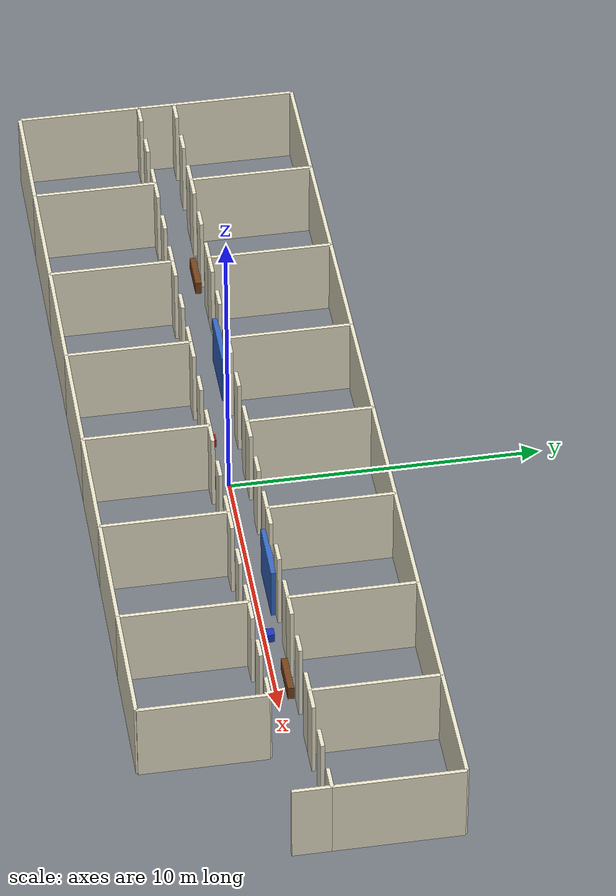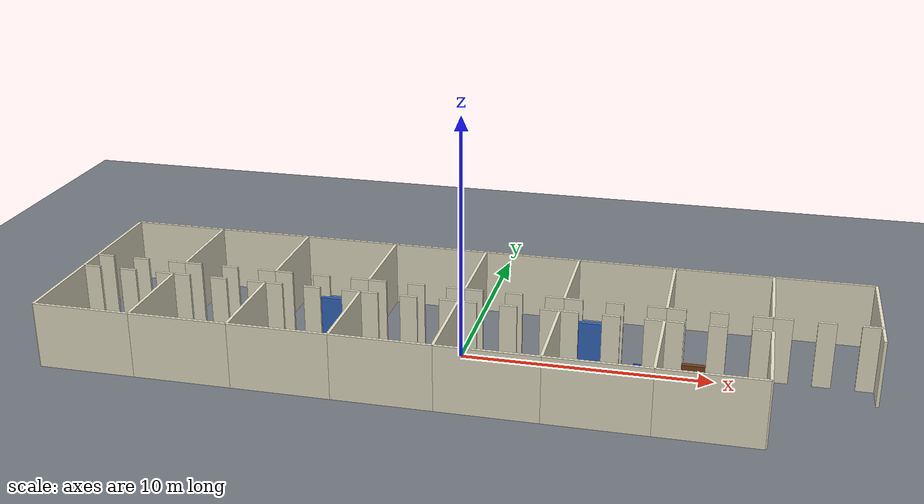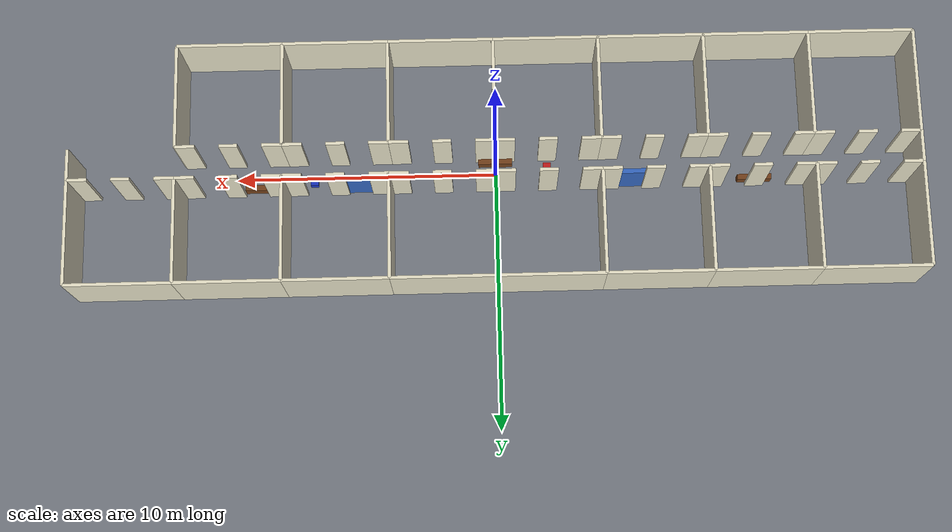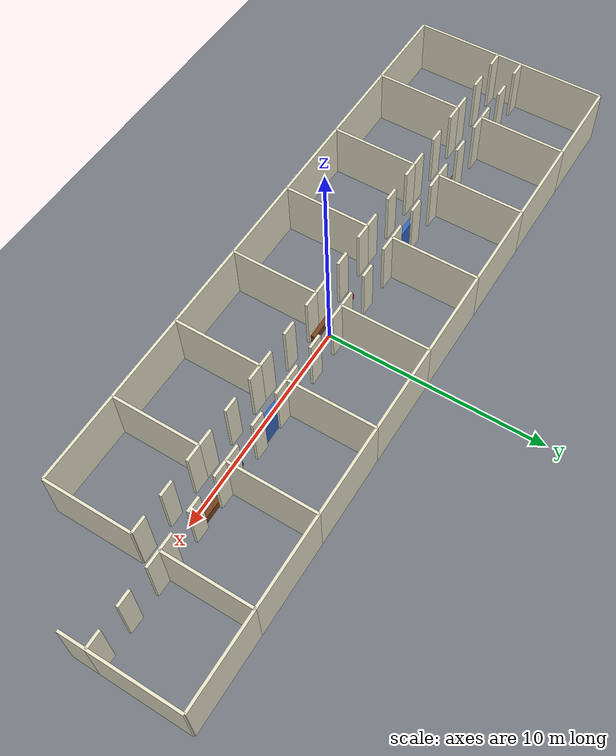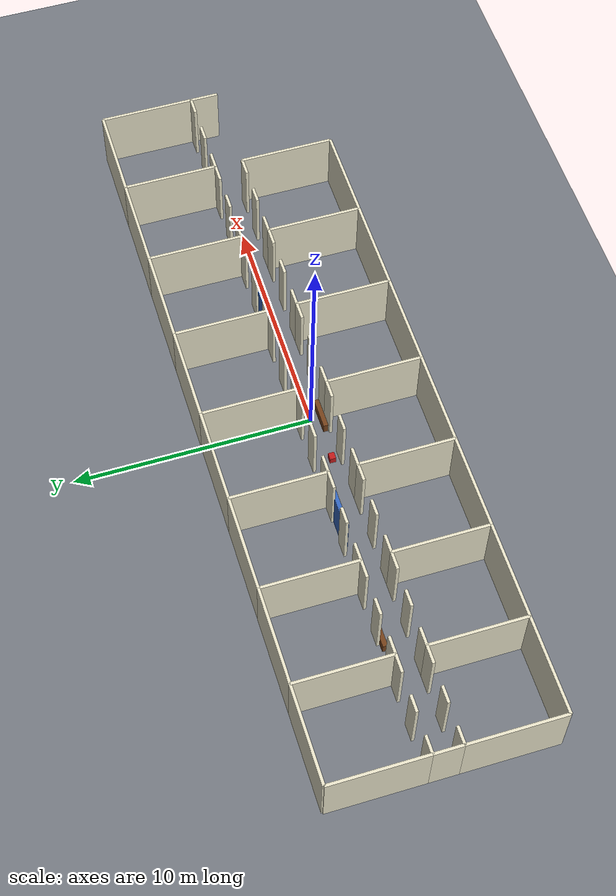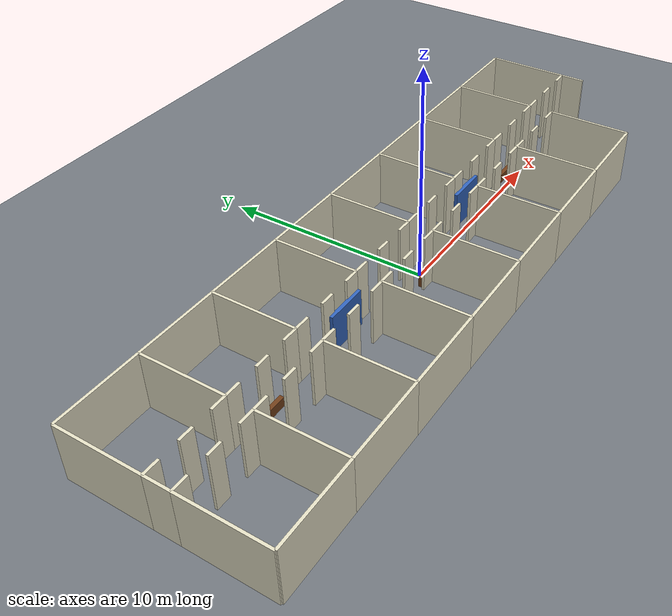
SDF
<sdf version="1.9">
 <world name="school_arena">
  <model name="ground">
   <static>true</static>
   <link name="link">
    <collision name="collision">
     <geometry><plane><normal>0 0 1</normal><size>80 40</size></plane></geometry>
    </collision>
    <visual name="visual">
     <geometry><plane><normal>0 0 1</normal><size>80 40</size></plane></geometry>
     <material><ambient>0.45 0.47 0.50 1</ambient><diffuse>0.45 0.47 0.50 1</diffuse></material>
    </visual>
   </link>
  </model>
  <model name="room_1_back">
   <static>true</static>
   <pose>-14.0 4.6 1.35 0 0 0</pose>
   <link name="link">
    <collision name="collision"><geometry><box><size>4.0 0.12 2.7</size></box></geometry></collision>
    <visual name="visual">
     <geometry><box><size>4.0 0.12 2.7</size></box></geometry>
     <material><ambient>0.90 0.88 0.78 1</ambient><diffuse>0.90 0.88 0.78 1</diffuse></material>
    </visual>
   </link>
  </model>
  <model name="room_1_left">
   <static>true</static>
   <pose>-16.0 2.5999999999999996 1.35 0 0 0</pose>
   <link name="link">
    <collision name="collision">
     <geometry><box><size>0.12 3.9999999999999996 2.7</size></box></geometry>
    </collision>
    <visual name="visual">
     <geometry><box><size>0.12 3.9999999999999996 2.7</size></box></geometry>
     <material><ambient>0.90 0.88 0.78 1</ambient><diffuse>0.90 0.88 0.78 1</diffuse></material>
    </visual>
   </link>
  </model>
  <model name="room_1_right">
   <static>true</static>
   <pose>-12.0 2.5999999999999996 1.35 0 0 0</pose>
   <link name="link">
    <collision name="collision">
     <geometry><box><size>0.12 3.9999999999999996 2.7</size></box></geometry>
    </collision>
    <visual name="visual">
     <geometry><box><size>0.12 3.9999999999999996 2.7</size></box></geometry>
     <material><ambient>0.90 0.88 0.78 1</ambient><diffuse>0.90 0.88 0.78 1</diffuse></material>
    </visual>
   </link>
  </model>
  <model name="room_1_wall_1">
   <static>true</static>
   <pose>-15.625 0.6 1.35 0 0 0</pose>
   <link name="link">
    <collision name="collision"><geometry><box><size>0.75 0.12 2.7</size></box></geometry></collision>
    <visual name="visual">
     <geometry><box><size>0.75 0.12 2.7</size></box></geometry>
     <material><ambient>0.90 0.88 0.78 1</ambient><diffuse>0.90 0.88 0.78 1</diffuse></material>
    </visual>
   </link>
  </model>
  <model name="room_1_wall_2">
   <static>true</static>
   <pose>-14.0 0.6 1.35 0 0 0</pose>
   <link name="link">
    <collision name="collision">
     <geometry><box><size>0.7000000000000028 0.12 2.7</size></box></geometry>
    </collision>
    <visual name="visual">
     <geometry><box><size>0.7000000000000028 0.12 2.7</size></box></geometry>
     <material><ambient>0.90 0.88 0.78 1</ambient><diffuse>0.90 0.88 0.78 1</diffuse></material>
    </visual>
   </link>
  </model>
  <model name="room_1_wall_3">
   <static>true</static>
   <pose>-12.375 0.6 1.35 0 0 0</pose>
   <link name="link">
    <collision name="collision"><geometry><box><size>0.75 0.12 2.7</size></box></geometry></collision>
    <visual name="visual">
     <geometry><box><size>0.75 0.12 2.7</size></box></geometry>
     <material><ambient>0.90 0.88 0.78 1</ambient><diffuse>0.90 0.88 0.78 1</diffuse></material>
    </visual>
   </link>
  </model>
  <model name="room_2_back">
   <static>true</static>
   <pose>-10.0 4.6 1.35 0 0 0</pose>
   <link name="link">
    <collision name="collision"><geometry><box><size>4.0 0.12 2.7</size></box></geometry></collision>
    <visual name="visual">
     <geometry><box><size>4.0 0.12 2.7</size></box></geometry>
     <material><ambient>0.90 0.88 0.78 1</ambient><diffuse>0.90 0.88 0.78 1</diffuse></material>
    </visual>
   </link>
  </model>
  <model name="room_2_left">
   <static>true</static>
   <pose>-12.0 2.5999999999999996 1.35 0 0 0</pose>
   <link name="link">
    <collision name="collision">
     <geometry><box><size>0.12 3.9999999999999996 2.7</size></box></geometry>
    </collision>
    <visual name="visual">
     <geometry><box><size>0.12 3.9999999999999996 2.7</size></box></geometry>
     <material><ambient>0.90 0.88 0.78 1</ambient><diffuse>0.90 0.88 0.78 1</diffuse></material>
    </visual>
   </link>
  </model>
  <model name="room_2_right">
   <static>true</static>
   <pose>-8.0 2.5999999999999996 1.35 0 0 0</pose>
   <link name="link">
    <collision name="collision">
     <geometry><box><size>0.12 3.9999999999999996 2.7</size></box></geometry>
    </collision>
    <visual name="visual">
     <geometry><box><size>0.12 3.9999999999999996 2.7</size></box></geometry>
     <material><ambient>0.90 0.88 0.78 1</ambient><diffuse>0.90 0.88 0.78 1</diffuse></material>
    </visual>
   </link>
  </model>
  <model name="room_2_wall_1">
   <static>true</static>
   <pose>-11.625 0.6 1.35 0 0 0</pose>
   <link name="link">
    <collision name="collision"><geometry><box><size>0.75 0.12 2.7</size></box></geometry></collision>
    <visual name="visual">
     <geometry><box><size>0.75 0.12 2.7</size></box></geometry>
     <material><ambient>0.90 0.88 0.78 1</ambient><diffuse>0.90 0.88 0.78 1</diffuse></material>
    </visual>
   </link>
  </model>
  <model name="room_2_wall_2">
   <static>true</static>
   <pose>-10.0 0.6 1.35 0 0 0</pose>
   <link name="link">
    <collision name="collision">
     <geometry><box><size>0.7000000000000028 0.12 2.7</size></box></geometry>
    </collision>
    <visual name="visual">
     <geometry><box><size>0.7000000000000028 0.12 2.7</size></box></geometry>
     <material><ambient>0.90 0.88 0.78 1</ambient><diffuse>0.90 0.88 0.78 1</diffuse></material>
    </visual>
   </link>
  </model>
  <model name="room_2_wall_3">
   <static>true</static>
   <pose>-8.375 0.6 1.35 0 0 0</pose>
   <link name="link">
    <collision name="collision"><geometry><box><size>0.75 0.12 2.7</size></box></geometry></collision>
    <visual name="visual">
     <geometry><box><size>0.75 0.12 2.7</size></box></geometry>
     <material><ambient>0.90 0.88 0.78 1</ambient><diffuse>0.90 0.88 0.78 1</diffuse></material>
    </visual>
   </link>
  </model>
  <model name="room_3_back">
   <static>true</static>
   <pose>-6.0 4.6 1.35 0 0 0</pose>
   <link name="link">
    <collision name="collision"><geometry><box><size>4.0 0.12 2.7</size></box></geometry></collision>
    <visual name="visual">
     <geometry><box><size>4.0 0.12 2.7</size></box></geometry>
     <material><ambient>0.90 0.88 0.78 1</ambient><diffuse>0.90 0.88 0.78 1</diffuse></material>
    </visual>
   </link>
  </model>
  <model name="room_3_left">
   <static>true</static>
   <pose>-8.0 2.5999999999999996 1.35 0 0 0</pose>
   <link name="link">
    <collision name="collision">
     <geometry><box><size>0.12 3.9999999999999996 2.7</size></box></geometry>
    </collision>
    <visual name="visual">
     <geometry><box><size>0.12 3.9999999999999996 2.7</size></box></geometry>
     <material><ambient>0.90 0.88 0.78 1</ambient><diffuse>0.90 0.88 0.78 1</diffuse></material>
    </visual>
   </link>
  </model>
  <model name="room_3_right">
   <static>true</static>
   <pose>-4.0 2.5999999999999996 1.35 0 0 0</pose>
   <link name="link">
    <collision name="collision">
     <geometry><box><size>0.12 3.9999999999999996 2.7</size></box></geometry>
    </collision>
    <visual name="visual">
     <geometry><box><size>0.12 3.9999999999999996 2.7</size></box></geometry>
     <material><ambient>0.90 0.88 0.78 1</ambient><diffuse>0.90 0.88 0.78 1</diffuse></material>
    </visual>
   </link>
  </model>
  <model name="room_3_wall_1">
   <static>true</static>
   <pose>-7.625 0.6 1.35 0 0 0</pose>
   <link name="link">
    <collision name="collision"><geometry><box><size>0.75 0.12 2.7</size></box></geometry></collision>
    <visual name="visual">
     <geometry><box><size>0.75 0.12 2.7</size></box></geometry>
     <material><ambient>0.90 0.88 0.78 1</ambient><diffuse>0.90 0.88 0.78 1</diffuse></material>
    </visual>
   </link>
  </model>
  <model name="room_3_wall_2">
   <static>true</static>
   <pose>-6.0 0.6 1.35 0 0 0</pose>
   <link name="link">
    <collision name="collision">
     <geometry><box><size>0.6999999999999993 0.12 2.7</size></box></geometry>
    </collision>
    <visual name="visual">
     <geometry><box><size>0.6999999999999993 0.12 2.7</size></box></geometry>
     <material><ambient>0.90 0.88 0.78 1</ambient><diffuse>0.90 0.88 0.78 1</diffuse></material>
    </visual>
   </link>
  </model>
  <model name="room_3_wall_3">
   <static>true</static>
   <pose>-4.375 0.6 1.35 0 0 0</pose>
   <link name="link">
    <collision name="collision"><geometry><box><size>0.75 0.12 2.7</size></box></geometry></collision>
    <visual name="visual">
     <geometry><box><size>0.75 0.12 2.7</size></box></geometry>
     <material><ambient>0.90 0.88 0.78 1</ambient><diffuse>0.90 0.88 0.78 1</diffuse></material>
    </visual>
   </link>
  </model>
  <model name="room_4_back">
   <static>true</static>
   <pose>-2.0 4.6 1.35 0 0 0</pose>
   <link name="link">
    <collision name="collision"><geometry><box><size>4.0 0.12 2.7</size></box></geometry></collision>
    <visual name="visual">
     <geometry><box><size>4.0 0.12 2.7</size></box></geometry>
     <material><ambient>0.90 0.88 0.78 1</ambient><diffuse>0.90 0.88 0.78 1</diffuse></material>
    </visual>
   </link>
  </model>
  <model name="room_4_left">
   <static>true</static>
   <pose>-4.0 2.5999999999999996 1.35 0 0 0</pose>
   <link name="link">
    <collision name="collision">
     <geometry><box><size>0.12 3.9999999999999996 2.7</size></box></geometry>
    </collision>
    <visual name="visual">
     <geometry><box><size>0.12 3.9999999999999996 2.7</size></box></geometry>
     <material><ambient>0.90 0.88 0.78 1</ambient><diffuse>0.90 0.88 0.78 1</diffuse></material>
    </visual>
   </link>
  </model>
  <model name="room_4_right">
   <static>true</static>
   <pose>0.0 2.5999999999999996 1.35 0 0 0</pose>
   <link name="link">
    <collision name="collision">
     <geometry><box><size>0.12 3.9999999999999996 2.7</size></box></geometry>
    </collision>
    <visual name="visual">
     <geometry><box><size>0.12 3.9999999999999996 2.7</size></box></geometry>
     <material><ambient>0.90 0.88 0.78 1</ambient><diffuse>0.90 0.88 0.78 1</diffuse></material>
    </visual>
   </link>
  </model>
  <model name="room_4_wall_1">
   <static>true</static>
   <pose>-3.625 0.6 1.35 0 0 0</pose>
   <link name="link">
    <collision name="collision"><geometry><box><size>0.75 0.12 2.7</size></box></geometry></collision>
    <visual name="visual">
     <geometry><box><size>0.75 0.12 2.7</size></box></geometry>
     <material><ambient>0.90 0.88 0.78 1</ambient><diffuse>0.90 0.88 0.78 1</diffuse></material>
    </visual>
   </link>
  </model>
  <model name="room_4_wall_2">
   <static>true</static>
   <pose>-2.0 0.6 1.35 0 0 0</pose>
   <link name="link">
    <collision name="collision">
     <geometry><box><size>0.6999999999999995 0.12 2.7</size></box></geometry>
    </collision>
    <visual name="visual">
     <geometry><box><size>0.6999999999999995 0.12 2.7</size></box></geometry>
     <material><ambient>0.90 0.88 0.78 1</ambient><diffuse>0.90 0.88 0.78 1</diffuse></material>
    </visual>
   </link>
  </model>
  <model name="room_4_wall_3">
   <static>true</static>
   <pose>-0.3750000000000001 0.6 1.35 0 0 0</pose>
   <link name="link">
    <collision name="collision">
     <geometry><box><size>0.7500000000000002 0.12 2.7</size></box></geometry>
    </collision>
    <visual name="visual">
     <geometry><box><size>0.7500000000000002 0.12 2.7</size></box></geometry>
     <material><ambient>0.90 0.88 0.78 1</ambient><diffuse>0.90 0.88 0.78 1</diffuse></material>
    </visual>
   </link>
  </model>
  <model name="room_5_back">
   <static>true</static>
   <pose>2.0 4.6 1.35 0 0 0</pose>
   <link name="link">
    <collision name="collision"><geometry><box><size>4.0 0.12 2.7</size></box></geometry></collision>
    <visual name="visual">
     <geometry><box><size>4.0 0.12 2.7</size></box></geometry>
     <material><ambient>0.90 0.88 0.78 1</ambient><diffuse>0.90 0.88 0.78 1</diffuse></material>
    </visual>
   </link>
  </model>
  <model name="room_5_left">
   <static>true</static>
   <pose>0.0 2.5999999999999996 1.35 0 0 0</pose>
   <link name="link">
    <collision name="collision">
     <geometry><box><size>0.12 3.9999999999999996 2.7</size></box></geometry>
    </collision>
    <visual name="visual">
     <geometry><box><size>0.12 3.9999999999999996 2.7</size></box></geometry>
     <material><ambient>0.90 0.88 0.78 1</ambient><diffuse>0.90 0.88 0.78 1</diffuse></material>
    </visual>
   </link>
  </model>
  <model name="room_5_right">
   <static>true</static>
   <pose>4.0 2.5999999999999996 1.35 0 0 0</pose>
   <link name="link">
    <collision name="collision">
     <geometry><box><size>0.12 3.9999999999999996 2.7</size></box></geometry>
    </collision>
    <visual name="visual">
     <geometry><box><size>0.12 3.9999999999999996 2.7</size></box></geometry>
     <material><ambient>0.90 0.88 0.78 1</ambient><diffuse>0.90 0.88 0.78 1</diffuse></material>
    </visual>
   </link>
  </model>
  <model name="room_5_wall_1">
   <static>true</static>
   <pose>0.375 0.6 1.35 0 0 0</pose>
   <link name="link">
    <collision name="collision"><geometry><box><size>0.75 0.12 2.7</size></box></geometry></collision>
    <visual name="visual">
     <geometry><box><size>0.75 0.12 2.7</size></box></geometry>
     <material><ambient>0.90 0.88 0.78 1</ambient><diffuse>0.90 0.88 0.78 1</diffuse></material>
    </visual>
   </link>
  </model>
  <model name="room_5_wall_2">
   <static>true</static>
   <pose>1.9999999999999998 0.6 1.35 0 0 0</pose>
   <link name="link">
    <collision name="collision">
     <geometry><box><size>0.6999999999999997 0.12 2.7</size></box></geometry>
    </collision>
    <visual name="visual">
     <geometry><box><size>0.6999999999999997 0.12 2.7</size></box></geometry>
     <material><ambient>0.90 0.88 0.78 1</ambient><diffuse>0.90 0.88 0.78 1</diffuse></material>
    </visual>
   </link>
  </model>
  <model name="room_5_wall_3">
   <static>true</static>
   <pose>3.625 0.6 1.35 0 0 0</pose>
   <link name="link">
    <collision name="collision"><geometry><box><size>0.75 0.12 2.7</size></box></geometry></collision>
    <visual name="visual">
     <geometry><box><size>0.75 0.12 2.7</size></box></geometry>
     <material><ambient>0.90 0.88 0.78 1</ambient><diffuse>0.90 0.88 0.78 1</diffuse></material>
    </visual>
   </link>
  </model>
  <model name="room_6_back">
   <static>true</static>
   <pose>6.0 4.6 1.35 0 0 0</pose>
   <link name="link">
    <collision name="collision"><geometry><box><size>4.0 0.12 2.7</size></box></geometry></collision>
    <visual name="visual">
     <geometry><box><size>4.0 0.12 2.7</size></box></geometry>
     <material><ambient>0.90 0.88 0.78 1</ambient><diffuse>0.90 0.88 0.78 1</diffuse></material>
    </visual>
   </link>
  </model>
  <model name="room_6_left">
   <static>true</static>
   <pose>4.0 2.5999999999999996 1.35 0 0 0</pose>
   <link name="link">
    <collision name="collision">
     <geometry><box><size>0.12 3.9999999999999996 2.7</size></box></geometry>
    </collision>
    <visual name="visual">
     <geometry><box><size>0.12 3.9999999999999996 2.7</size></box></geometry>
     <material><ambient>0.90 0.88 0.78 1</ambient><diffuse>0.90 0.88 0.78 1</diffuse></material>
    </visual>
   </link>
  </model>
  <model name="room_6_right">
   <static>true</static>
   <pose>8.0 2.5999999999999996 1.35 0 0 0</pose>
   <link name="link">
    <collision name="collision">
     <geometry><box><size>0.12 3.9999999999999996 2.7</size></box></geometry>
    </collision>
    <visual name="visual">
     <geometry><box><size>0.12 3.9999999999999996 2.7</size></box></geometry>
     <material><ambient>0.90 0.88 0.78 1</ambient><diffuse>0.90 0.88 0.78 1</diffuse></material>
    </visual>
   </link>
  </model>
  <model name="room_6_wall_1">
   <static>true</static>
   <pose>4.375 0.6 1.35 0 0 0</pose>
   <link name="link">
    <collision name="collision"><geometry><box><size>0.75 0.12 2.7</size></box></geometry></collision>
    <visual name="visual">
     <geometry><box><size>0.75 0.12 2.7</size></box></geometry>
     <material><ambient>0.90 0.88 0.78 1</ambient><diffuse>0.90 0.88 0.78 1</diffuse></material>
    </visual>
   </link>
  </model>
  <model name="room_6_wall_2">
   <static>true</static>
   <pose>6.0 0.6 1.35 0 0 0</pose>
   <link name="link">
    <collision name="collision">
     <geometry><box><size>0.6999999999999993 0.12 2.7</size></box></geometry>
    </collision>
    <visual name="visual">
     <geometry><box><size>0.6999999999999993 0.12 2.7</size></box></geometry>
     <material><ambient>0.90 0.88 0.78 1</ambient><diffuse>0.90 0.88 0.78 1</diffuse></material>
    </visual>
   </link>
  </model>
  <model name="room_6_wall_3">
   <static>true</static>
   <pose>7.625 0.6 1.35 0 0 0</pose>
   <link name="link">
    <collision name="collision"><geometry><box><size>0.75 0.12 2.7</size></box></geometry></collision>
    <visual name="visual">
     <geometry><box><size>0.75 0.12 2.7</size></box></geometry>
     <material><ambient>0.90 0.88 0.78 1</ambient><diffuse>0.90 0.88 0.78 1</diffuse></material>
    </visual>
   </link>
  </model>
  <model name="room_7_back">
   <static>true</static>
   <pose>10.0 4.6 1.35 0 0 0</pose>
   <link name="link">
    <collision name="collision"><geometry><box><size>4.0 0.12 2.7</size></box></geometry></collision>
    <visual name="visual">
     <geometry><box><size>4.0 0.12 2.7</size></box></geometry>
     <material><ambient>0.90 0.88 0.78 1</ambient><diffuse>0.90 0.88 0.78 1</diffuse></material>
    </visual>
   </link>
  </model>
  <model name="room_7_left">
   <static>true</static>
   <pose>8.0 2.5999999999999996 1.35 0 0 0</pose>
   <link name="link">
    <collision name="collision">
     <geometry><box><size>0.12 3.9999999999999996 2.7</size></box></geometry>
    </collision>
    <visual name="visual">
     <geometry><box><size>0.12 3.9999999999999996 2.7</size></box></geometry>
     <material><ambient>0.90 0.88 0.78 1</ambient><diffuse>0.90 0.88 0.78 1</diffuse></material>
    </visual>
   </link>
  </model>
  <model name="room_7_right">
   <static>true</static>
   <pose>12.0 2.5999999999999996 1.35 0 0 0</pose>
   <link name="link">
    <collision name="collision">
     <geometry><box><size>0.12 3.9999999999999996 2.7</size></box></geometry>
    </collision>
    <visual name="visual">
     <geometry><box><size>0.12 3.9999999999999996 2.7</size></box></geometry>
     <material><ambient>0.90 0.88 0.78 1</ambient><diffuse>0.90 0.88 0.78 1</diffuse></material>
    </visual>
   </link>
  </model>
  <model name="room_7_wall_1">
   <static>true</static>
   <pose>8.375 0.6 1.35 0 0 0</pose>
   <link name="link">
    <collision name="collision"><geometry><box><size>0.75 0.12 2.7</size></box></geometry></collision>
    <visual name="visual">
     <geometry><box><size>0.75 0.12 2.7</size></box></geometry>
     <material><ambient>0.90 0.88 0.78 1</ambient><diffuse>0.90 0.88 0.78 1</diffuse></material>
    </visual>
   </link>
  </model>
  <model name="room_7_wall_2">
   <static>true</static>
   <pose>10.0 0.6 1.35 0 0 0</pose>
   <link name="link">
    <collision name="collision">
     <geometry><box><size>0.7000000000000028 0.12 2.7</size></box></geometry>
    </collision>
    <visual name="visual">
     <geometry><box><size>0.7000000000000028 0.12 2.7</size></box></geometry>
     <material><ambient>0.90 0.88 0.78 1</ambient><diffuse>0.90 0.88 0.78 1</diffuse></material>
    </visual>
   </link>
  </model>
  <model name="room_7_wall_3">
   <static>true</static>
   <pose>11.625 0.6 1.35 0 0 0</pose>
   <link name="link">
    <collision name="collision"><geometry><box><size>0.75 0.12 2.7</size></box></geometry></collision>
    <visual name="visual">
     <geometry><box><size>0.75 0.12 2.7</size></box></geometry>
     <material><ambient>0.90 0.88 0.78 1</ambient><diffuse>0.90 0.88 0.78 1</diffuse></material>
    </visual>
   </link>
  </model>
  <model name="room_8_back">
   <static>true</static>
   <pose>14.0 4.6 1.35 0 0 0</pose>
   <link name="link">
    <collision name="collision"><geometry><box><size>4.0 0.12 2.7</size></box></geometry></collision>
    <visual name="visual">
     <geometry><box><size>4.0 0.12 2.7</size></box></geometry>
     <material><ambient>0.90 0.88 0.78 1</ambient><diffuse>0.90 0.88 0.78 1</diffuse></material>
    </visual>
   </link>
  </model>
  <model name="room_8_left">
   <static>true</static>
   <pose>12.0 2.5999999999999996 1.35 0 0 0</pose>
   <link name="link">
    <collision name="collision">
     <geometry><box><size>0.12 3.9999999999999996 2.7</size></box></geometry>
    </collision>
    <visual name="visual">
     <geometry><box><size>0.12 3.9999999999999996 2.7</size></box></geometry>
     <material><ambient>0.90 0.88 0.78 1</ambient><diffuse>0.90 0.88 0.78 1</diffuse></material>
    </visual>
   </link>
  </model>
  <model name="room_8_right">
   <static>true</static>
   <pose>16.0 2.5999999999999996 1.35 0 0 0</pose>
   <link name="link">
    <collision name="collision">
     <geometry><box><size>0.12 3.9999999999999996 2.7</size></box></geometry>
    </collision>
    <visual name="visual">
     <geometry><box><size>0.12 3.9999999999999996 2.7</size></box></geometry>
     <material><ambient>0.90 0.88 0.78 1</ambient><diffuse>0.90 0.88 0.78 1</diffuse></material>
    </visual>
   </link>
  </model>
  <model name="room_8_wall_1">
   <static>true</static>
   <pose>12.375 0.6 1.35 0 0 0</pose>
   <link name="link">
    <collision name="collision"><geometry><box><size>0.75 0.12 2.7</size></box></geometry></collision>
    <visual name="visual">
     <geometry><box><size>0.75 0.12 2.7</size></box></geometry>
     <material><ambient>0.90 0.88 0.78 1</ambient><diffuse>0.90 0.88 0.78 1</diffuse></material>
    </visual>
   </link>
  </model>
  <model name="room_8_wall_2">
   <static>true</static>
   <pose>14.0 0.6 1.35 0 0 0</pose>
   <link name="link">
    <collision name="collision">
     <geometry><box><size>0.7000000000000028 0.12 2.7</size></box></geometry>
    </collision>
    <visual name="visual">
     <geometry><box><size>0.7000000000000028 0.12 2.7</size></box></geometry>
     <material><ambient>0.90 0.88 0.78 1</ambient><diffuse>0.90 0.88 0.78 1</diffuse></material>
    </visual>
   </link>
  </model>
  <model name="room_8_wall_3">
   <static>true</static>
   <pose>15.625 0.6 1.35 0 0 0</pose>
   <link name="link">
    <collision name="collision"><geometry><box><size>0.75 0.12 2.7</size></box></geometry></collision>
    <visual name="visual">
     <geometry><box><size>0.75 0.12 2.7</size></box></geometry>
     <material><ambient>0.90 0.88 0.78 1</ambient><diffuse>0.90 0.88 0.78 1</diffuse></material>
    </visual>
   </link>
  </model>
  <model name="room_9_back">
   <static>true</static>
   <pose>-14.0 -4.6 1.35 0 0 0</pose>
   <link name="link">
    <collision name="collision"><geometry><box><size>4.0 0.12 2.7</size></box></geometry></collision>
    <visual name="visual">
     <geometry><box><size>4.0 0.12 2.7</size></box></geometry>
     <material><ambient>0.90 0.88 0.78 1</ambient><diffuse>0.90 0.88 0.78 1</diffuse></material>
    </visual>
   </link>
  </model>
  <model name="room_9_left">
   <static>true</static>
   <pose>-16.0 -2.5999999999999996 1.35 0 0 0</pose>
   <link name="link">
    <collision name="collision">
     <geometry><box><size>0.12 3.9999999999999996 2.7</size></box></geometry>
    </collision>
    <visual name="visual">
     <geometry><box><size>0.12 3.9999999999999996 2.7</size></box></geometry>
     <material><ambient>0.90 0.88 0.78 1</ambient><diffuse>0.90 0.88 0.78 1</diffuse></material>
    </visual>
   </link>
  </model>
  <model name="room_9_right">
   <static>true</static>
   <pose>-12.0 -2.5999999999999996 1.35 0 0 0</pose>
   <link name="link">
    <collision name="collision">
     <geometry><box><size>0.12 3.9999999999999996 2.7</size></box></geometry>
    </collision>
    <visual name="visual">
     <geometry><box><size>0.12 3.9999999999999996 2.7</size></box></geometry>
     <material><ambient>0.90 0.88 0.78 1</ambient><diffuse>0.90 0.88 0.78 1</diffuse></material>
    </visual>
   </link>
  </model>
  <model name="room_9_wall_1">
   <static>true</static>
   <pose>-15.625 -0.6 1.35 0 0 0</pose>
   <link name="link">
    <collision name="collision"><geometry><box><size>0.75 0.12 2.7</size></box></geometry></collision>
    <visual name="visual">
     <geometry><box><size>0.75 0.12 2.7</size></box></geometry>
     <material><ambient>0.90 0.88 0.78 1</ambient><diffuse>0.90 0.88 0.78 1</diffuse></material>
    </visual>
   </link>
  </model>
  <model name="room_9_wall_2">
   <static>true</static>
   <pose>-14.0 -0.6 1.35 0 0 0</pose>
   <link name="link">
    <collision name="collision">
     <geometry><box><size>0.7000000000000028 0.12 2.7</size></box></geometry>
    </collision>
    <visual name="visual">
     <geometry><box><size>0.7000000000000028 0.12 2.7</size></box></geometry>
     <material><ambient>0.90 0.88 0.78 1</ambient><diffuse>0.90 0.88 0.78 1</diffuse></material>
    </visual>
   </link>
  </model>
  <model name="room_9_wall_3">
   <static>true</static>
   <pose>-12.375 -0.6 1.35 0 0 0</pose>
   <link name="link">
    <collision name="collision"><geometry><box><size>0.75 0.12 2.7</size></box></geometry></collision>
    <visual name="visual">
     <geometry><box><size>0.75 0.12 2.7</size></box></geometry>
     <material><ambient>0.90 0.88 0.78 1</ambient><diffuse>0.90 0.88 0.78 1</diffuse></material>
    </visual>
   </link>
  </model>
  <model name="room_10_back">
   <static>true</static>
   <pose>-10.0 -4.6 1.35 0 0 0</pose>
   <link name="link">
    <collision name="collision"><geometry><box><size>4.0 0.12 2.7</size></box></geometry></collision>
    <visual name="visual">
     <geometry><box><size>4.0 0.12 2.7</size></box></geometry>
     <material><ambient>0.90 0.88 0.78 1</ambient><diffuse>0.90 0.88 0.78 1</diffuse></material>
    </visual>
   </link>
  </model>
  <model name="room_10_left">
   <static>true</static>
   <pose>-12.0 -2.5999999999999996 1.35 0 0 0</pose>
   <link name="link">
    <collision name="collision">
     <geometry><box><size>0.12 3.9999999999999996 2.7</size></box></geometry>
    </collision>
    <visual name="visual">
     <geometry><box><size>0.12 3.9999999999999996 2.7</size></box></geometry>
     <material><ambient>0.90 0.88 0.78 1</ambient><diffuse>0.90 0.88 0.78 1</diffuse></material>
    </visual>
   </link>
  </model>
  <model name="room_10_right">
   <static>true</static>
   <pose>-8.0 -2.5999999999999996 1.35 0 0 0</pose>
   <link name="link">
    <collision name="collision">
     <geometry><box><size>0.12 3.9999999999999996 2.7</size></box></geometry>
    </collision>
    <visual name="visual">
     <geometry><box><size>0.12 3.9999999999999996 2.7</size></box></geometry>
     <material><ambient>0.90 0.88 0.78 1</ambient><diffuse>0.90 0.88 0.78 1</diffuse></material>
    </visual>
   </link>
  </model>
  <model name="room_10_wall_1">
   <static>true</static>
   <pose>-11.625 -0.6 1.35 0 0 0</pose>
   <link name="link">
    <collision name="collision"><geometry><box><size>0.75 0.12 2.7</size></box></geometry></collision>
    <visual name="visual">
     <geometry><box><size>0.75 0.12 2.7</size></box></geometry>
     <material><ambient>0.90 0.88 0.78 1</ambient><diffuse>0.90 0.88 0.78 1</diffuse></material>
    </visual>
   </link>
  </model>
  <model name="room_10_wall_2">
   <static>true</static>
   <pose>-10.0 -0.6 1.35 0 0 0</pose>
   <link name="link">
    <collision name="collision">
     <geometry><box><size>0.7000000000000028 0.12 2.7</size></box></geometry>
    </collision>
    <visual name="visual">
     <geometry><box><size>0.7000000000000028 0.12 2.7</size></box></geometry>
     <material><ambient>0.90 0.88 0.78 1</ambient><diffuse>0.90 0.88 0.78 1</diffuse></material>
    </visual>
   </link>
  </model>
  <model name="room_10_wall_3">
   <static>true</static>
   <pose>-8.375 -0.6 1.35 0 0 0</pose>
   <link name="link">
    <collision name="collision"><geometry><box><size>0.75 0.12 2.7</size></box></geometry></collision>
    <visual name="visual">
     <geometry><box><size>0.75 0.12 2.7</size></box></geometry>
     <material><ambient>0.90 0.88 0.78 1</ambient><diffuse>0.90 0.88 0.78 1</diffuse></material>
    </visual>
   </link>
  </model>
  <model name="room_11_back">
   <static>true</static>
   <pose>-6.0 -4.6 1.35 0 0 0</pose>
   <link name="link">
    <collision name="collision"><geometry><box><size>4.0 0.12 2.7</size></box></geometry></collision>
    <visual name="visual">
     <geometry><box><size>4.0 0.12 2.7</size></box></geometry>
     <material><ambient>0.90 0.88 0.78 1</ambient><diffuse>0.90 0.88 0.78 1</diffuse></material>
    </visual>
   </link>
  </model>
  <model name="room_11_left">
   <static>true</static>
   <pose>-8.0 -2.5999999999999996 1.35 0 0 0</pose>
   <link name="link">
    <collision name="collision">
     <geometry><box><size>0.12 3.9999999999999996 2.7</size></box></geometry>
    </collision>
    <visual name="visual">
     <geometry><box><size>0.12 3.9999999999999996 2.7</size></box></geometry>
     <material><ambient>0.90 0.88 0.78 1</ambient><diffuse>0.90 0.88 0.78 1</diffuse></material>
    </visual>
   </link>
  </model>
  <model name="room_11_right">
   <static>true</static>
   <pose>-4.0 -2.5999999999999996 1.35 0 0 0</pose>
   <link name="link">
    <collision name="collision">
     <geometry><box><size>0.12 3.9999999999999996 2.7</size></box></geometry>
    </collision>
    <visual name="visual">
     <geometry><box><size>0.12 3.9999999999999996 2.7</size></box></geometry>
     <material><ambient>0.90 0.88 0.78 1</ambient><diffuse>0.90 0.88 0.78 1</diffuse></material>
    </visual>
   </link>
  </model>
  <model name="room_11_wall_1">
   <static>true</static>
   <pose>-7.625 -0.6 1.35 0 0 0</pose>
   <link name="link">
    <collision name="collision"><geometry><box><size>0.75 0.12 2.7</size></box></geometry></collision>
    <visual name="visual">
     <geometry><box><size>0.75 0.12 2.7</size></box></geometry>
     <material><ambient>0.90 0.88 0.78 1</ambient><diffuse>0.90 0.88 0.78 1</diffuse></material>
    </visual>
   </link>
  </model>
  <model name="room_11_wall_2">
   <static>true</static>
   <pose>-6.0 -0.6 1.35 0 0 0</pose>
   <link name="link">
    <collision name="collision">
     <geometry><box><size>0.6999999999999993 0.12 2.7</size></box></geometry>
    </collision>
    <visual name="visual">
     <geometry><box><size>0.6999999999999993 0.12 2.7</size></box></geometry>
     <material><ambient>0.90 0.88 0.78 1</ambient><diffuse>0.90 0.88 0.78 1</diffuse></material>
    </visual>
   </link>
  </model>
  <model name="room_11_wall_3">
   <static>true</static>
   <pose>-4.375 -0.6 1.35 0 0 0</pose>
   <link name="link">
    <collision name="collision"><geometry><box><size>0.75 0.12 2.7</size></box></geometry></collision>
    <visual name="visual">
     <geometry><box><size>0.75 0.12 2.7</size></box></geometry>
     <material><ambient>0.90 0.88 0.78 1</ambient><diffuse>0.90 0.88 0.78 1</diffuse></material>
    </visual>
   </link>
  </model>
  <model name="room_12_back">
   <static>true</static>
   <pose>-2.0 -4.6 1.35 0 0 0</pose>
   <link name="link">
    <collision name="collision"><geometry><box><size>4.0 0.12 2.7</size></box></geometry></collision>
    <visual name="visual">
     <geometry><box><size>4.0 0.12 2.7</size></box></geometry>
     <material><ambient>0.90 0.88 0.78 1</ambient><diffuse>0.90 0.88 0.78 1</diffuse></material>
    </visual>
   </link>
  </model>
  <model name="room_12_left">
   <static>true</static>
   <pose>-4.0 -2.5999999999999996 1.35 0 0 0</pose>
   <link name="link">
    <collision name="collision">
     <geometry><box><size>0.12 3.9999999999999996 2.7</size></box></geometry>
    </collision>
    <visual name="visual">
     <geometry><box><size>0.12 3.9999999999999996 2.7</size></box></geometry>
     <material><ambient>0.90 0.88 0.78 1</ambient><diffuse>0.90 0.88 0.78 1</diffuse></material>
    </visual>
   </link>
  </model>
  <model name="room_12_right">
   <static>true</static>
   <pose>0.0 -2.5999999999999996 1.35 0 0 0</pose>
   <link name="link">
    <collision name="collision">
     <geometry><box><size>0.12 3.9999999999999996 2.7</size></box></geometry>
    </collision>
    <visual name="visual">
     <geometry><box><size>0.12 3.9999999999999996 2.7</size></box></geometry>
     <material><ambient>0.90 0.88 0.78 1</ambient><diffuse>0.90 0.88 0.78 1</diffuse></material>
    </visual>
   </link>
  </model>
  <model name="room_12_wall_1">
   <static>true</static>
   <pose>-3.625 -0.6 1.35 0 0 0</pose>
   <link name="link">
    <collision name="collision"><geometry><box><size>0.75 0.12 2.7</size></box></geometry></collision>
    <visual name="visual">
     <geometry><box><size>0.75 0.12 2.7</size></box></geometry>
     <material><ambient>0.90 0.88 0.78 1</ambient><diffuse>0.90 0.88 0.78 1</diffuse></material>
    </visual>
   </link>
  </model>
  <model name="room_12_wall_2">
   <static>true</static>
   <pose>-2.0 -0.6 1.35 0 0 0</pose>
   <link name="link">
    <collision name="collision">
     <geometry><box><size>0.6999999999999995 0.12 2.7</size></box></geometry>
    </collision>
    <visual name="visual">
     <geometry><box><size>0.6999999999999995 0.12 2.7</size></box></geometry>
     <material><ambient>0.90 0.88 0.78 1</ambient><diffuse>0.90 0.88 0.78 1</diffuse></material>
    </visual>
   </link>
  </model>
  <model name="room_12_wall_3">
   <static>true</static>
   <pose>-0.3750000000000001 -0.6 1.35 0 0 0</pose>
   <link name="link">
    <collision name="collision">
     <geometry><box><size>0.7500000000000002 0.12 2.7</size></box></geometry>
    </collision>
    <visual name="visual">
     <geometry><box><size>0.7500000000000002 0.12 2.7</size></box></geometry>
     <material><ambient>0.90 0.88 0.78 1</ambient><diffuse>0.90 0.88 0.78 1</diffuse></material>
    </visual>
   </link>
  </model>
  <model name="room_13_back">
   <static>true</static>
   <pose>2.0 -4.6 1.35 0 0 0</pose>
   <link name="link">
    <collision name="collision"><geometry><box><size>4.0 0.12 2.7</size></box></geometry></collision>
    <visual name="visual">
     <geometry><box><size>4.0 0.12 2.7</size></box></geometry>
     <material><ambient>0.90 0.88 0.78 1</ambient><diffuse>0.90 0.88 0.78 1</diffuse></material>
    </visual>
   </link>
  </model>
  <model name="room_13_left">
   <static>true</static>
   <pose>0.0 -2.5999999999999996 1.35 0 0 0</pose>
   <link name="link">
    <collision name="collision">
     <geometry><box><size>0.12 3.9999999999999996 2.7</size></box></geometry>
    </collision>
    <visual name="visual">
     <geometry><box><size>0.12 3.9999999999999996 2.7</size></box></geometry>
     <material><ambient>0.90 0.88 0.78 1</ambient><diffuse>0.90 0.88 0.78 1</diffuse></material>
    </visual>
   </link>
  </model>
  <model name="room_13_right">
   <static>true</static>
   <pose>4.0 -2.5999999999999996 1.35 0 0 0</pose>
   <link name="link">
    <collision name="collision">
     <geometry><box><size>0.12 3.9999999999999996 2.7</size></box></geometry>
    </collision>
    <visual name="visual">
     <geometry><box><size>0.12 3.9999999999999996 2.7</size></box></geometry>
     <material><ambient>0.90 0.88 0.78 1</ambient><diffuse>0.90 0.88 0.78 1</diffuse></material>
    </visual>
   </link>
  </model>
  <model name="room_13_wall_1">
   <static>true</static>
   <pose>0.375 -0.6 1.35 0 0 0</pose>
   <link name="link">
    <collision name="collision"><geometry><box><size>0.75 0.12 2.7</size></box></geometry></collision>
    <visual name="visual">
     <geometry><box><size>0.75 0.12 2.7</size></box></geometry>
     <material><ambient>0.90 0.88 0.78 1</ambient><diffuse>0.90 0.88 0.78 1</diffuse></material>
    </visual>
   </link>
  </model>
  <model name="room_13_wall_2">
   <static>true</static>
   <pose>1.9999999999999998 -0.6 1.35 0 0 0</pose>
   <link name="link">
    <collision name="collision">
     <geometry><box><size>0.6999999999999997 0.12 2.7</size></box></geometry>
    </collision>
    <visual name="visual">
     <geometry><box><size>0.6999999999999997 0.12 2.7</size></box></geometry>
     <material><ambient>0.90 0.88 0.78 1</ambient><diffuse>0.90 0.88 0.78 1</diffuse></material>
    </visual>
   </link>
  </model>
  <model name="room_13_wall_3">
   <static>true</static>
   <pose>3.625 -0.6 1.35 0 0 0</pose>
   <link name="link">
    <collision name="collision"><geometry><box><size>0.75 0.12 2.7</size></box></geometry></collision>
    <visual name="visual">
     <geometry><box><size>0.75 0.12 2.7</size></box></geometry>
     <material><ambient>0.90 0.88 0.78 1</ambient><diffuse>0.90 0.88 0.78 1</diffuse></material>
    </visual>
   </link>
  </model>
  <model name="room_14_back">
   <static>true</static>
   <pose>6.0 -4.6 1.35 0 0 0</pose>
   <link name="link">
    <collision name="collision"><geometry><box><size>4.0 0.12 2.7</size></box></geometry></collision>
    <visual name="visual">
     <geometry><box><size>4.0 0.12 2.7</size></box></geometry>
     <material><ambient>0.90 0.88 0.78 1</ambient><diffuse>0.90 0.88 0.78 1</diffuse></material>
    </visual>
   </link>
  </model>
  <model name="room_14_left">
   <static>true</static>
   <pose>4.0 -2.5999999999999996 1.35 0 0 0</pose>
   <link name="link">
    <collision name="collision">
     <geometry><box><size>0.12 3.9999999999999996 2.7</size></box></geometry>
    </collision>
    <visual name="visual">
     <geometry><box><size>0.12 3.9999999999999996 2.7</size></box></geometry>
     <material><ambient>0.90 0.88 0.78 1</ambient><diffuse>0.90 0.88 0.78 1</diffuse></material>
    </visual>
   </link>
  </model>
  <model name="room_14_right">
   <static>true</static>
   <pose>8.0 -2.5999999999999996 1.35 0 0 0</pose>
   <link name="link">
    <collision name="collision">
     <geometry><box><size>0.12 3.9999999999999996 2.7</size></box></geometry>
    </collision>
    <visual name="visual">
     <geometry><box><size>0.12 3.9999999999999996 2.7</size></box></geometry>
     <material><ambient>0.90 0.88 0.78 1</ambient><diffuse>0.90 0.88 0.78 1</diffuse></material>
    </visual>
   </link>
  </model>
  <model name="room_14_wall_1">
   <static>true</static>
   <pose>4.375 -0.6 1.35 0 0 0</pose>
   <link name="link">
    <collision name="collision"><geometry><box><size>0.75 0.12 2.7</size></box></geometry></collision>
    <visual name="visual">
     <geometry><box><size>0.75 0.12 2.7</size></box></geometry>
     <material><ambient>0.90 0.88 0.78 1</ambient><diffuse>0.90 0.88 0.78 1</diffuse></material>
    </visual>
   </link>
  </model>
  <model name="room_14_wall_2">
   <static>true</static>
   <pose>6.0 -0.6 1.35 0 0 0</pose>
   <link name="link">
    <collision name="collision">
     <geometry><box><size>0.6999999999999993 0.12 2.7</size></box></geometry>
    </collision>
    <visual name="visual">
     <geometry><box><size>0.6999999999999993 0.12 2.7</size></box></geometry>
     <material><ambient>0.90 0.88 0.78 1</ambient><diffuse>0.90 0.88 0.78 1</diffuse></material>
    </visual>
   </link>
  </model>
  <model name="room_14_wall_3">
   <static>true</static>
   <pose>7.625 -0.6 1.35 0 0 0</pose>
   <link name="link">
    <collision name="collision"><geometry><box><size>0.75 0.12 2.7</size></box></geometry></collision>
    <visual name="visual">
     <geometry><box><size>0.75 0.12 2.7</size></box></geometry>
     <material><ambient>0.90 0.88 0.78 1</ambient><diffuse>0.90 0.88 0.78 1</diffuse></material>
    </visual>
   </link>
  </model>
  <model name="room_15_back">
   <static>true</static>
   <pose>10.0 -4.6 1.35 0 0 0</pose>
   <link name="link">
    <collision name="collision"><geometry><box><size>4.0 0.12 2.7</size></box></geometry></collision>
    <visual name="visual">
     <geometry><box><size>4.0 0.12 2.7</size></box></geometry>
     <material><ambient>0.90 0.88 0.78 1</ambient><diffuse>0.90 0.88 0.78 1</diffuse></material>
    </visual>
   </link>
  </model>
  <model name="room_15_left">
   <static>true</static>
   <pose>8.0 -2.5999999999999996 1.35 0 0 0</pose>
   <link name="link">
    <collision name="collision">
     <geometry><box><size>0.12 3.9999999999999996 2.7</size></box></geometry>
    </collision>
    <visual name="visual">
     <geometry><box><size>0.12 3.9999999999999996 2.7</size></box></geometry>
     <material><ambient>0.90 0.88 0.78 1</ambient><diffuse>0.90 0.88 0.78 1</diffuse></material>
    </visual>
   </link>
  </model>
  <model name="room_15_right">
   <static>true</static>
   <pose>12.0 -2.5999999999999996 1.35 0 0 0</pose>
   <link name="link">
    <collision name="collision">
     <geometry><box><size>0.12 3.9999999999999996 2.7</size></box></geometry>
    </collision>
    <visual name="visual">
     <geometry><box><size>0.12 3.9999999999999996 2.7</size></box></geometry>
     <material><ambient>0.90 0.88 0.78 1</ambient><diffuse>0.90 0.88 0.78 1</diffuse></material>
    </visual>
   </link>
  </model>
  <model name="room_15_wall_1">
   <static>true</static>
   <pose>8.375 -0.6 1.35 0 0 0</pose>
   <link name="link">
    <collision name="collision"><geometry><box><size>0.75 0.12 2.7</size></box></geometry></collision>
    <visual name="visual">
     <geometry><box><size>0.75 0.12 2.7</size></box></geometry>
     <material><ambient>0.90 0.88 0.78 1</ambient><diffuse>0.90 0.88 0.78 1</diffuse></material>
    </visual>
   </link>
  </model>
  <model name="room_15_wall_2">
   <static>true</static>
   <pose>10.0 -0.6 1.35 0 0 0</pose>
   <link name="link">
    <collision name="collision">
     <geometry><box><size>0.7000000000000028 0.12 2.7</size></box></geometry>
    </collision>
    <visual name="visual">
     <geometry><box><size>0.7000000000000028 0.12 2.7</size></box></geometry>
     <material><ambient>0.90 0.88 0.78 1</ambient><diffuse>0.90 0.88 0.78 1</diffuse></material>
    </visual>
   </link>
  </model>
  <model name="room_15_wall_3">
   <static>true</static>
   <pose>11.625 -0.6 1.35 0 0 0</pose>
   <link name="link">
    <collision name="collision"><geometry><box><size>0.75 0.12 2.7</size></box></geometry></collision>
    <visual name="visual">
     <geometry><box><size>0.75 0.12 2.7</size></box></geometry>
     <material><ambient>0.90 0.88 0.78 1</ambient><diffuse>0.90 0.88 0.78 1</diffuse></material>
    </visual>
   </link>
  </model>
  <model name="corridor_left_end">
   <static>true</static>
   <pose>-16.0 0.0 1.35 0 0 0</pose>
   <link name="link">
    <collision name="collision"><geometry><box><size>0.12 1.2 2.7</size></box></geometry></collision>
    <visual name="visual">
     <geometry><box><size>0.12 1.2 2.7</size></box></geometry>
     <material><ambient>0.90 0.88 0.78 1</ambient><diffuse>0.90 0.88 0.78 1</diffuse></material>
    </visual>
   </link>
  </model>
  <model name="corridor_right_end">
   <static>true</static>
   <pose>16.0 0.0 1.35 0 0 0</pose>
   <link name="link">
    <collision name="collision"><geometry><box><size>0.12 1.2 2.7</size></box></geometry></collision>
    <visual name="visual">
     <geometry><box><size>0.12 1.2 2.7</size></box></geometry>
     <material><ambient>0.90 0.88 0.78 1</ambient><diffuse>0.90 0.88 0.78 1</diffuse></material>
    </visual>
   </link>
  </model>
  <model name="bench_01">
   <static>true</static>
   <pose>-10 0.42 0.225 0 0 0</pose>
   <link name="link">
    <collision name="collision"><geometry><box><size>1.3 0.2 0.45</size></box></geometry></collision>
    <visual name="visual">
     <geometry><box><size>1.3 0.2 0.45</size></box></geometry>
     <material><ambient>0.45 0.25 0.10 1</ambient><diffuse>0.45 0.25 0.10 1</diffuse></material>
    </visual>
   </link>
  </model>
  <model name="bench_02">
   <static>true</static>
   <pose>0 -0.42 0.225 0 0 0</pose>
   <link name="link">
    <collision name="collision"><geometry><box><size>1.3 0.2 0.45</size></box></geometry></collision>
    <visual name="visual">
     <geometry><box><size>1.3 0.2 0.45</size></box></geometry>
     <material><ambient>0.45 0.25 0.10 1</ambient><diffuse>0.45 0.25 0.10 1</diffuse></material>
    </visual>
   </link>
  </model>
  <model name="bench_03">
   <static>true</static>
   <pose>9 0.42 0.225 0 0 0</pose>
   <link name="link">
    <collision name="collision"><geometry><box><size>1.3 0.2 0.45</size></box></geometry></collision>
    <visual name="visual">
     <geometry><box><size>1.3 0.2 0.45</size></box></geometry>
     <material><ambient>0.45 0.25 0.10 1</ambient><diffuse>0.45 0.25 0.10 1</diffuse></material>
    </visual>
   </link>
  </model>
  <model name="locker_01">
   <static>true</static>
   <pose>-5 0.48 0.9 0 0 0</pose>
   <link name="link">
    <collision name="collision"><geometry><box><size>2.0 0.18 1.8</size></box></geometry></collision>
    <visual name="visual">
     <geometry><box><size>2.0 0.18 1.8</size></box></geometry>
     <material><ambient>0.20 0.40 0.75 1</ambient><diffuse>0.20 0.40 0.75 1</diffuse></material>
    </visual>
   </link>
  </model>
  <model name="locker_02">
   <static>true</static>
   <pose>5 0.48 0.9 0 0 0</pose>
   <link name="link">
    <collision name="collision"><geometry><box><size>2.0 0.18 1.8</size></box></geometry></collision>
    <visual name="visual">
     <geometry><box><size>2.0 0.18 1.8</size></box></geometry>
     <material><ambient>0.20 0.40 0.75 1</ambient><diffuse>0.20 0.40 0.75 1</diffuse></material>
    </visual>
   </link>
  </model>
  <model name="backpack_01">
   <static>true</static>
   <pose>-2 -0.25 0.15 0 0 0</pose>
   <link name="link">
    <collision name="collision"><geometry><box><size>0.3 0.25 0.3</size></box></geometry></collision>
    <visual name="visual">
     <geometry><box><size>0.3 0.25 0.3</size></box></geometry>
     <material><ambient>0.75 0.10 0.10 1</ambient><diffuse>0.75 0.10 0.10 1</diffuse></material>
    </visual>
   </link>
  </model>
  <model name="backpack_02">
   <static>true</static>
   <pose>7 0.2 0.15 0 0 0</pose>
   <link name="link">
    <collision name="collision"><geometry><box><size>0.3 0.25 0.3</size></box></geometry></collision>
    <visual name="visual">
     <geometry><box><size>0.3 0.25 0.3</size></box></geometry>
     <material><ambient>0.10 0.20 0.75 1</ambient><diffuse>0.10 0.20 0.75 1</diffuse></material>
    </visual>
   </link>
  </model>
 </world>
</sdf>
